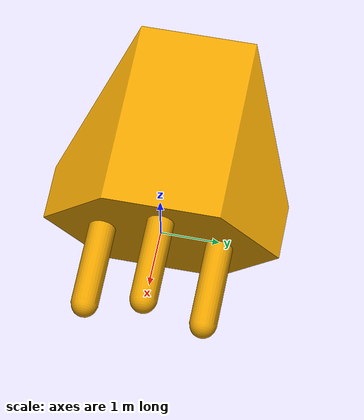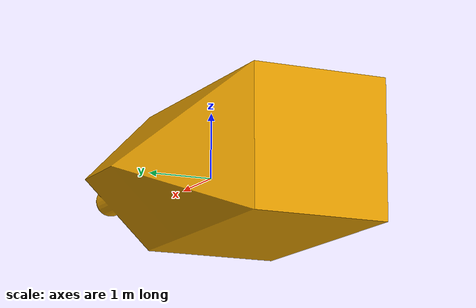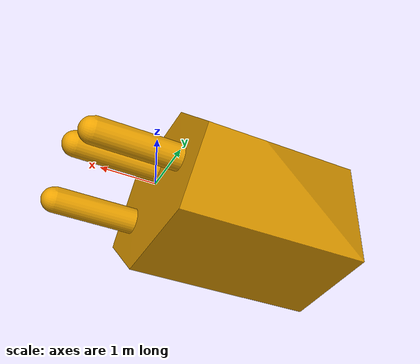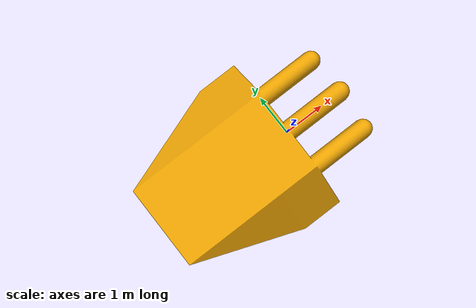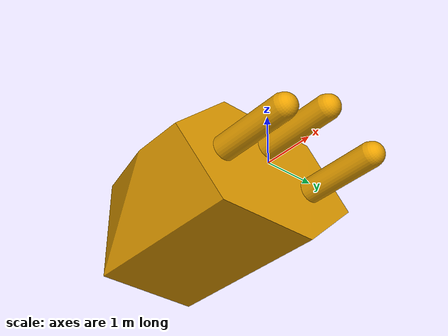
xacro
<?xml version="1.0"?>
<robot name="plug" xmlns:xacro="http://www.ros.org/wiki/xacro">

<xacro:property name="r_l"  value="0.18"    />
<xacro:property name="r_h"  value="0.12"   />
<xacro:property name="r_w"  value="0.04"   />

<xacro:macro name="box_I" params="m w h d">
    <inertia ixx="${1/12 * m * (d*d  + h * h)}" ixy="0.0" ixz="0.0" iyy="${1/12 * m * (h * h + w * w)}" iyz="0.0" izz="${1/12 * m * (w * w + d * d)}" />
</xacro:macro>

<link name="plug_link">
	<visual>
		<origin xyz="0 0 0" rpy="0 0 0"/>
		<geometry>
   			<mesh filename="package://objects/meshes/plug/plug.dae"/>
		</geometry>
        </visual>

	<inertial>
		<origin xyz="0 0 0" rpy="0 0 0"/>
		<mass value="1"/>
		<xacro:box_I m="1.0" w="${r_w}" h="${r_h}" d="${r_l}"/>
	</inertial>

	<collision>
		<origin xyz="0 0 0" rpy="0 0 0"/>
		<geometry>
   			<mesh filename="package://objects/meshes/plug/plug.dae"/>
		</geometry>
  	</collision>

</link>

</robot>
